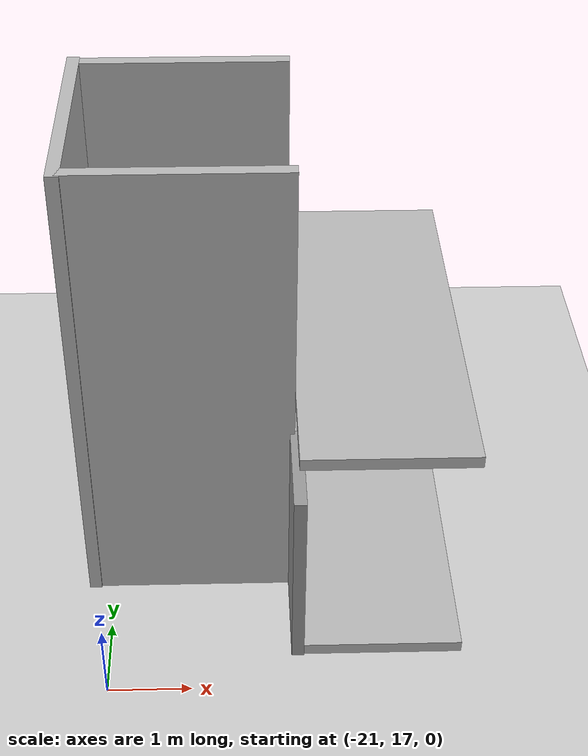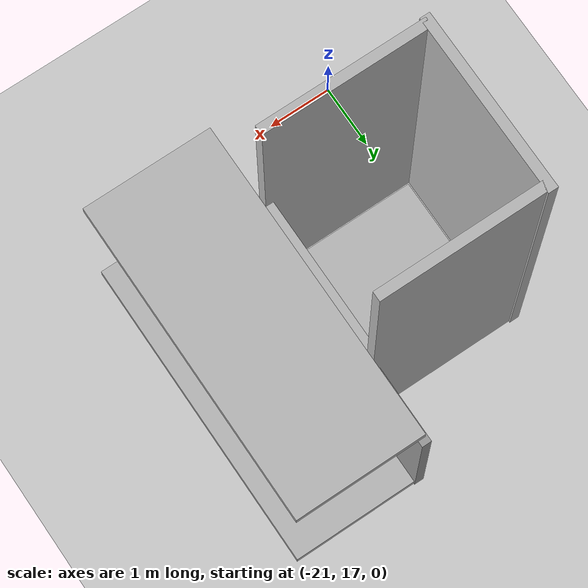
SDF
<?xml version="1.0" ?>
<sdf version="1.5">
  <world name="default">

    <!-- A global light source -->
    <include>
      <uri>model://sun</uri>
    </include>

    <!-- A ground plane -->
    <include>
      <uri>model://ground_plane</uri>
    </include>

    <!-- World plugin that publishes event messages.
         The topics used in these messages match up with topics used by the
         plugin in the elevator model below.
    -->
    <plugin filename="libSimEventsPlugin.so" name="elevator_event_plugin">
      <!-- Region on the ground floor, in front of the elevator -->
      <region>
        <name>region1</name>
        <volume>
          <min>-18.5 19 0</min>
          <max>-17.5 21 1</max>
        </volume>
      </region>

      <!-- Region on the first floor, in front of the elevator -->
      <region>
        <name>region2</name>
        <volume>
          <min>-18.5 19 3</min>
          <max>-17.5 21 4</max>
        </volume>
      </region>

      <!-- Event publisher for ground floor-->
      <event>
        <name>region1_event</name>
        <type>occupied</type>
        <region>region1</region>
        <topic>~/elevator</topic>
        <msg_data>0</msg_data>
      </event>

      <!-- Event publisher for first floor-->
      <event>
        <name>region2_event</name>
        <type>occupied</type>
        <region>region2</region>
        <topic>~/elevator</topic>
        <msg_data>1</msg_data>
      </event>
    </plugin>

    <!-- The elevator car -->
    <model name="elevator">
      <pose>-20 20 0.075 0 0 0</pose>
      <link name="link">
        <inertial>
          <mass>800</mass>
        </inertial>

        <collision name="floor_collision">
          <geometry>
            <box>
              <size>2.25 2.25 0.15</size>
            </box>
          </geometry>
        </collision>
        <visual name="floor_visual">
          <geometry>
            <box>
              <size>2.25 2.25 0.15</size>
            </box>
          </geometry>
        </visual>

        <!-- wall1_collision is the wall to the right of the door, when
             facing the door -->
        <collision name="wall1_collision">
          <pose>1.0745 0.5725 1.125 0 0 0</pose>
          <geometry>
            <box>
              <size>0.1 1.15 2.25</size>
            </box>
          </geometry>
        </collision>
        <visual name="wall1_visual">
          <pose>1.0745 0.5725 1.125 0 0 0</pose>
          <geometry>
            <box>
              <size>0.1 1.15 2.25</size>
            </box>
          </geometry>
          <material>
            <script>
              <name>Gazebo/Red</name>
            </script>
          </material>
        </visual>

        <!-- wall2_collision is the wall to the left of the door, when
             facing the door -->
        <collision name="wall2_collision">
          <pose>1.0745 -1.0625 1.125 0 0 0</pose>
          <geometry>
            <box>
              <size>0.1 0.125 2.25</size>
            </box>
          </geometry>
        </collision>
        <visual name="wall2_visual">
          <pose>1.0745 -1.0625 1.125 0 0 0</pose>
          <geometry>
            <box>
              <size>0.1 0.125 2.25</size>
            </box>
          </geometry>
          <material>
            <script>
              <name>Gazebo/Red</name>
            </script>
          </material>
        </visual>
      </link>

      <link name="door">
        <pose>1.0745 -0.5 1.125 0 0 0</pose>
        <collision name="collision">
          <geometry>
            <box>
              <size>0.08 1.0 2.25</size>
            </box>
          </geometry>
        </collision>
        <visual name="visual">
          <geometry>
            <box>
              <size>0.08 1.0 2.25</size>
            </box>
          </geometry>
        </visual>
      </link>

      <joint name="door" type="prismatic">
        <parent>link</parent>
        <child>door</child>
        <axis>
          <xyz>0 1 0</xyz>
          <limit>
            <lower>0</lower>
            <upper>1</upper>
            <effort>10</effort>
          </limit>

          <dynamics>
            <damping>2</damping>
          </dynamics>
        </axis>
      </joint>

      <joint name="lift" type="prismatic">
        <parent>world</parent>
        <child>link</child>
        <axis>
          <xyz>0 0 1</xyz>
          <limit>
            <lower>0</lower>
            <upper>10</upper>
            <effort>100000</effort>
          </limit>

          <dynamics>
            <damping>50</damping>
          </dynamics>
        </axis>
        <physics>
          <ode>
            <implicit_spring_damper>1</implicit_spring_damper>
          </ode>
        </physics>
      </joint>

      <!-- Plugin to control the elevator -->
      <plugin filename="libElevatorPlugin.so" name="elevator_plugin">
        <lift_joint>elevator::lift</lift_joint>
        <door_joint>elevator::door</door_joint>
        <floor_height>3.075</floor_height>

        <!-- Time the elevator door will stay open in seconds -->
        <door_wait_time>10</door_wait_time>

        <!-- This topic is used to control the elevator -->
        <topic>~/elevator</topic>
      </plugin>
    </model>

    <!-- Elevator shaft -->
    <model name="elevator_shaft">
        <pose>-20 20 0.00 0 0 0</pose>
      <static>true</static>
      <link name="link">
        <collision name="shaft_wall1_collision">
          <pose>0 1.25 3 0 0 0</pose>
          <geometry>
            <box>
              <size>2.5 0.15 6</size>
            </box>
          </geometry>
        </collision>
        <visual name="shaft_wall1_visual">
          <pose>0 1.25 3 0 0 0</pose>
          <geometry>
            <box>
              <size>2.5 0.15 6</size>
            </box>
          </geometry>
        </visual>

        <collision name="shaft_wall2_collision">
          <pose>0 -1.25 3 0 0 0</pose>
          <geometry>
            <box>
              <size>2.5 0.15 6</size>
            </box>
          </geometry>
        </collision>
        <visual name="shaft_wall2_visual">
          <pose>0 -1.25 3 0 0 0</pose>
          <geometry>
            <box>
              <size>2.5 0.15 6</size>
            </box>
          </geometry>
        </visual>

        <collision name="shaft_wall3_collision">
          <pose>-1.25 0 3 0 0 0</pose>
          <geometry>
            <box>
              <size>0.15 2.7 6</size>
            </box>
          </geometry>
        </collision>
        <visual name="shaft_wall3_visual">
          <pose>-1.25 0 3 0 0 0</pose>
          <geometry>
            <box>
              <size>0.15 2.7 6</size>
            </box>
          </geometry>
        </visual>

        <collision name="floor0_collision">
          <pose>1.19 0 0.075 0 0 0</pose>
          <geometry>
            <box>
              <size>0.12 2.5 0.15</size>
            </box>
          </geometry>
        </collision>
        <visual name="floor0_visual">
          <pose>1.19 0 0.075 0 0 0</pose>
          <geometry>
            <box>
              <size>0.12 2.5 0.15</size>
            </box>
          </geometry>
        </visual>

        <collision name="floor1_collision">
          <pose>1.19 0 3.075 0 0 0</pose>
          <geometry>
            <box>
              <size>0.12 2.5 0.15</size>
            </box>
          </geometry>
        </collision>
        <visual name="floor1_visual">
          <pose>1.19 0 3.075 0 0 0</pose>
          <geometry>
            <box>
              <size>0.12 2.5 0.15</size>
            </box>
          </geometry>
        </visual>
      </link>
    </model>

    <model name="floor0">
      <pose>-17.75 20 0.075 0 0 0</pose>
      <static>true</static>
      <link name="link">
        <collision name="floor_collision">
          <geometry>
            <box>
              <size>2.0 5.0 0.15</size>
            </box>
          </geometry>
        </collision>
        <visual name="floor_visual">
          <geometry>
            <box>
              <size>2.0 5.0 0.15</size>
            </box>
          </geometry>
        </visual>
      </link>
    </model>

    <model name="floor1">
      <pose>-17.75 20 3.075 0 0 0</pose>
      <static>true</static>
      <link name="link">
        <collision name="floor_collision">
          <geometry>
            <box>
              <size>2.0 5.0 0.15</size>
            </box>
          </geometry>
        </collision>
        <visual name="floor_visual">
          <geometry>
            <box>
              <size>2.0 5.0 0.15</size>
            </box>
          </geometry>
        </visual>
      </link>
    </model>

  <model name='elevator_1.world'>
    <pose frame=''>-18.7606 20.0004 0 0 -0 0</pose>
    <link name='Wall_2'>
      <collision name='Wall_2_Collision'>
        <geometry>
          <box>
            <size>1.25 0.15 2.5</size>
          </box>
        </geometry>
        <pose frame=''>0 0 1.25 0 -0 0</pose>
      </collision>
      <visual name='Wall_2_Visual'>
        <pose frame=''>0 0 1.25 0 -0 0</pose>
          <meta>
            <layer>0</layer>
          </meta>
        <geometry>
          <box>
            <size>1.25 0.15 2.5</size>
          </box>
        </geometry>
        <material>
          <script>
            <uri>file://media/materials/scripts/gazebo.material</uri>
            <name>Gazebo/Grey</name>
          </script>
          <ambient>1 1 1 1</ambient>
        </material>
      </visual>
      <pose frame=''>0.029051 -1.89352 0 0 -0 1.5708</pose>
    </link>
    <link name='Wall_4'>
      <collision name='Wall_4_Collision'>
        <geometry>
          <box>
            <size>1.25 0.15 2.5</size>
          </box>
        </geometry>
        <pose frame=''>0 0 1.25 0 -0 0</pose>
      </collision>
      <visual name='Wall_4_Visual'>
        <pose frame=''>0 0 1.25 0 -0 0</pose>
        <geometry>
          <box>
            <size>1.25 0.15 2.5</size>
          </box>
        </geometry>
        <material>
          <script>
            <uri>file://media/materials/scripts/gazebo.material</uri>
            <name>Gazebo/Grey</name>
          </script>
          <ambient>1 1 1 1</ambient>
        </material>
      </visual>
      <pose frame=''>-0.029051 1.89352 0 0 0 -1.5708</pose>
    </link>
    <static>1</static>
  </model>

  </world>
</sdf>
